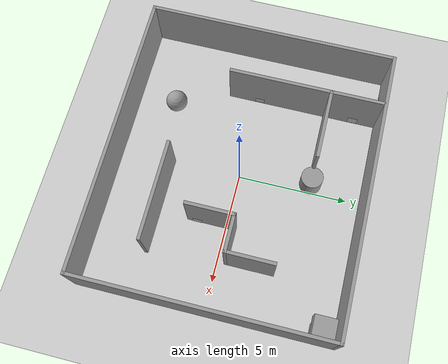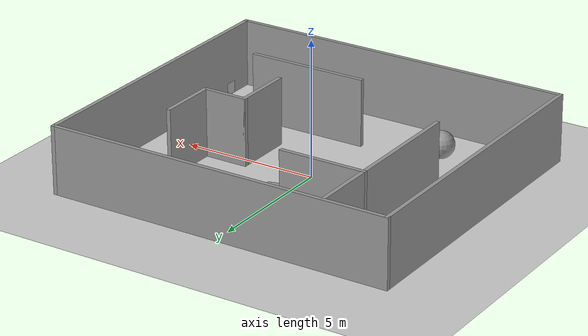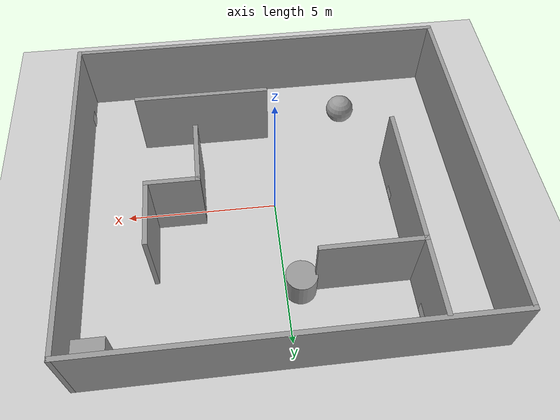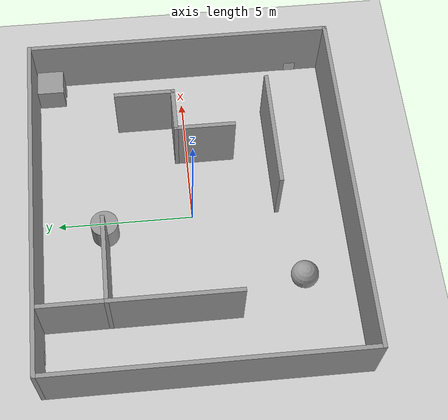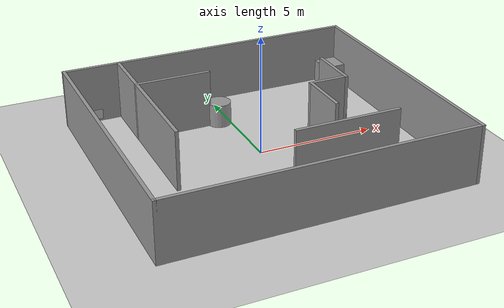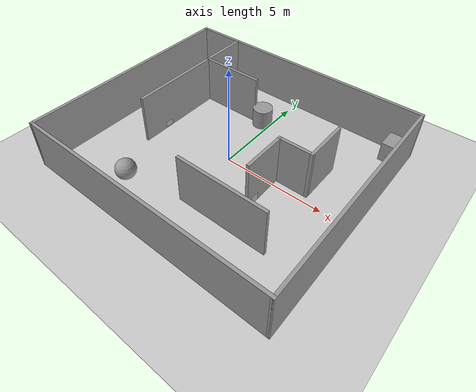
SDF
<sdf version="1.7">
 <world name="default">
  <light name="sun" type="directional">
   <pose>0 0 10 0 -0 0</pose>
   <diffuse>0.8 0.8 0.8 1</diffuse>
   <specular>0.2 0.2 0.2 1</specular>
   <attenuation>
    <range>1000</range>
    <constant>0.9</constant>
    <linear>0.01</linear>
    <quadratic>0.001</quadratic>
   </attenuation>
   <direction>-0.5 0.1 -0.9</direction>
   <spot><inner_angle>0</inner_angle><outer_angle>0</outer_angle><falloff>0</falloff></spot>
  </light>
  <model name="ground_plane">
   <static>1</static>
   <link name="link">
    <collision name="collision">
     <geometry><plane><normal>0 0 1</normal><size>100 100</size></plane></geometry>
     <surface><friction><ode><mu>100</mu><mu2>50</mu2></ode></friction></surface>
    </collision>
    <visual name="visual">
     <cast_shadows>0</cast_shadows>
     <geometry><plane><normal>0 0 1</normal><size>100 100</size></plane></geometry>
     <material>
      <script><uri>file://media/materials/scripts/gazebo.material</uri><name>Gazebo/Grey</name></script>
     </material>
    </visual>
   </link>
  </model>
  <gravity>0 0 -9.8</gravity>
  <magnetic_field>6e-06 2.3e-05 -4.2e-05</magnetic_field>
  <atmosphere type="adiabatic"/>
  <physics type="ode">
   <max_step_size>0.001</max_step_size>
   <real_time_factor>1</real_time_factor>
   <real_time_update_rate>1000</real_time_update_rate>
  </physics>
  <scene><ambient>0.4 0.4 0.4 1</ambient><background>0.7 0.7 0.7 1</background><shadows>1</shadows></scene>
  <audio><device>default</device></audio>
  <spherical_coordinates>
   <surface_model>EARTH_WGS84</surface_model>
   <latitude_deg>0</latitude_deg>
   <longitude_deg>0</longitude_deg>
   <elevation>0</elevation>
   <heading_deg>0</heading_deg>
  </spherical_coordinates>
  <model name="mapa">
   <pose>0.020811 0.003459 0 0 -0 0</pose>
   <link name="Wall_61">
    <collision name="Wall_61_Collision">
     <geometry><box><size>4.75 0.15 2.5</size></box></geometry>
     <pose>0 0 1.25 0 -0 0</pose>
    </collision>
    <visual name="Wall_61_Visual">
     <pose>0 0 1.25 0 -0 0</pose>
     <geometry><box><size>4.75 0.15 2.5</size></box></geometry>
     <material>
      <script><uri>file://media/materials/scripts/gazebo.material</uri><name>Gazebo/Grey</name></script>
      <ambient>1 1 1 1</ambient>
     </material>
     <meta><layer>0</layer></meta>
    </visual>
    <pose>-4.07465 0.925227 0 0 -0 -1.5708</pose>
   </link>
   <link name="Wall_63">
    <collision name="Wall_63_Collision">
     <geometry><box><size>3.25 0.15 2.5</size></box></geometry>
     <pose>0 0 1.25 0 -0 0</pose>
    </collision>
    <visual name="Wall_63_Visual">
     <pose>0 0 1.25 0 -0 0</pose>
     <geometry><box><size>3.25 0.15 2.5</size></box></geometry>
     <material>
      <script><uri>file://media/materials/scripts/gazebo.material</uri><name>Gazebo/Grey</name></script>
      <ambient>1 1 1 1</ambient>
     </material>
     <meta><layer>0</layer></meta>
    </visual>
    <pose>-2.52465 3.22523 0 0 -0 0</pose>
   </link>
   <link name="Wall_66">
    <collision name="Wall_66_Collision">
     <geometry><box><size>4.5 0.15 2.5</size></box></geometry>
     <pose>0 0 1.25 0 -0 0</pose>
    </collision>
    <visual name="Wall_66_Visual">
     <pose>0 0 1.25 0 -0 0</pose>
     <geometry><box><size>4.5 0.15 2.5</size></box></geometry>
     <material>
      <script><uri>file://media/materials/scripts/gazebo.material</uri><name>Gazebo/Grey</name></script>
      <ambient>1 1 1 1</ambient>
     </material>
     <meta><layer>0</layer></meta>
    </visual>
    <pose>2.15807 -3.15995 0 0 -0 3.14159</pose>
   </link>
   <link name="Wall_69">
    <collision name="Wall_69_Collision">
     <geometry><box><size>13 0.15 2.5</size></box></geometry>
     <pose>0 0 1.25 0 -0 0</pose>
    </collision>
    <visual name="Wall_69_Visual">
     <pose>0 0 1.25 0 -0 0</pose>
     <geometry><box><size>13 0.15 2.5</size></box></geometry>
     <material>
      <script><uri>file://media/materials/scripts/gazebo.material</uri><name>Gazebo/Grey</name></script>
      <ambient>1 1 1 1</ambient>
     </material>
     <meta><layer>0</layer></meta>
    </visual>
    <pose>0 -5.675 0 0 -0 0</pose>
   </link>
   <link name="Wall_71">
    <collision name="Wall_71_Collision">
     <geometry><box><size>11.5 0.15 2.5</size></box></geometry>
     <pose>0 0 1.25 0 -0 0</pose>
    </collision>
    <visual name="Wall_71_Visual">
     <pose>0 0 1.25 0 -0 0</pose>
     <geometry><box><size>11.5 0.15 2.5</size></box></geometry>
     <material>
      <script><uri>file://media/materials/scripts/gazebo.material</uri><name>Gazebo/Grey</name></script>
      <ambient>1 1 1 1</ambient>
     </material>
     <meta><layer>0</layer></meta>
    </visual>
    <pose>6.425 0 0 0 -0 1.5708</pose>
   </link>
   <link name="Wall_73">
    <collision name="Wall_73_Collision">
     <geometry><box><size>2.25 0.15 2.5</size></box></geometry>
     <pose>0 0 1.25 0 -0 0</pose>
    </collision>
    <visual name="Wall_73_Visual">
     <pose>0 0 1.25 0 -0 0</pose>
     <geometry><box><size>2.25 0.15 2.5</size></box></geometry>
     <material>
      <script><uri>file://media/materials/scripts/gazebo.material</uri><name>Gazebo/Grey</name></script>
      <ambient>1 1 1 1</ambient>
     </material>
     <meta><layer>0</layer></meta>
    </visual>
    <pose>4.01646 1.43647 0 0 -0 -1.5708</pose>
   </link>
   <link name="Wall_77">
    <collision name="Wall_77_Collision">
     <geometry><box><size>13 0.15 2.5</size></box></geometry>
     <pose>0 0 1.25 0 -0 0</pose>
    </collision>
    <visual name="Wall_77_Visual">
     <pose>0 0 1.25 0 -0 0</pose>
     <geometry><box><size>13 0.15 2.5</size></box></geometry>
     <material>
      <script><uri>file://media/materials/scripts/gazebo.material</uri><name>Gazebo/Grey</name></script>
      <ambient>1 1 1 1</ambient>
     </material>
     <meta><layer>0</layer></meta>
    </visual>
    <pose>0 5.675 0 0 -0 3.14159</pose>
   </link>
   <link name="Wall_78">
    <collision name="Wall_78_Collision">
     <geometry><box><size>11.5 0.15 2.5</size></box></geometry>
     <pose>0 0 1.25 0 -0 0</pose>
    </collision>
    <visual name="Wall_78_Visual">
     <pose>0 0 1.25 0 -0 0</pose>
     <geometry><box><size>11.5 0.15 2.5</size></box></geometry>
     <material>
      <script><uri>file://media/materials/scripts/gazebo.material</uri><name>Gazebo/Grey</name></script>
      <ambient>1 1 1 1</ambient>
     </material>
     <meta><layer>0</layer></meta>
    </visual>
    <pose>-6.425 0 0 0 -0 -1.5708</pose>
   </link>
   <link name="Wall_80">
    <collision name="Wall_80_Collision">
     <geometry><box><size>2.5 0.15 2.5</size></box></geometry>
     <pose>0 0 1.25 0 -0 0</pose>
    </collision>
    <visual name="Wall_80_Visual">
     <pose>0 0 1.25 0 -0 0</pose>
     <geometry><box><size>2.5 0.15 2.5</size></box></geometry>
     <material>
      <script><uri>file://media/materials/scripts/gazebo.material</uri><name>Gazebo/Grey</name></script>
      <ambient>1 1 1 1</ambient>
     </material>
     <meta><layer>0</layer></meta>
    </visual>
    <pose>-4.07465 4.40023 0 0 -0 1.5708</pose>
   </link>
   <link name="Wall_82">
    <collision name="Wall_82_Collision">
     <geometry><box><size>1.75 0.15 2.5</size></box></geometry>
     <pose>0 0 1.25 0 -0 0</pose>
    </collision>
    <visual name="Wall_82_Visual">
     <pose>0 0 1.25 0 -0 0</pose>
     <geometry><box><size>1.75 0.15 2.5</size></box></geometry>
     <material>
      <script><uri>file://media/materials/scripts/gazebo.material</uri><name>Gazebo/Grey</name></script>
      <ambient>1 1 1 1</ambient>
     </material>
     <meta><layer>0</layer></meta>
    </visual>
    <pose>3.21646 0.386473 0 0 -0 3.14159</pose>
   </link>
   <link name="Wall_83">
    <collision name="Wall_83_Collision">
     <geometry><box><size>2.25 0.15 2.5</size></box></geometry>
     <pose>0 0 1.25 0 -0 0</pose>
    </collision>
    <visual name="Wall_83_Visual">
     <pose>0 0 1.25 0 -0 0</pose>
     <geometry><box><size>2.25 0.15 2.5</size></box></geometry>
     <material>
      <script><uri>file://media/materials/scripts/gazebo.material</uri><name>Gazebo/Grey</name></script>
      <ambient>1 1 1 1</ambient>
     </material>
     <meta><layer>0</layer></meta>
    </visual>
    <pose>2.41646 -0.663527 0 0 -0 -1.5708</pose>
   </link>
   <static>1</static>
  </model>
  <model name="mapa_0">
   <link name="link_0">
    <inertial>
     <mass>1</mass>
     <inertia>
      <ixx>0.166667</ixx>
      <ixy>0</ixy>
      <ixz>0</ixz>
      <iyy>0.166667</iyy>
      <iyz>0</iyz>
      <izz>0.166667</izz>
     </inertia>
    </inertial>
    <pose>5.98387 4.87912 0.479891 0 -0 0</pose>
    <visual name="visual">
     <geometry><box><size>1 1 1</size></box></geometry>
     <material>
      <lighting>1</lighting>
      <script><uri>file://media/materials/scripts/gazebo.material</uri><name>Gazebo/Grey</name></script>
      <shader type="pixel"/>
     </material>
    </visual>
    <collision name="collision">
     <geometry><box><size>1 1 1</size></box></geometry>
     <surface>
      <friction>
       <ode><mu>1</mu><mu2>1</mu2><fdir1>0 0 0</fdir1><slip1>0</slip1><slip2>0</slip2></ode>
       <torsional>
        <coefficient>1</coefficient>
        <patch_radius>0</patch_radius>
        <surface_radius>0</surface_radius>
        <use_patch_radius>1</use_patch_radius>
        <ode><slip>0</slip></ode>
       </torsional>
      </friction>
      <bounce><restitution_coefficient>0</restitution_coefficient><threshold>1e+06</threshold></bounce>
      <contact>
       <collide_without_contact>0</collide_without_contact>
       <collide_without_contact_bitmask>1</collide_without_contact_bitmask>
       <collide_bitmask>1</collide_bitmask>
       <ode>
        <soft_cfm>0</soft_cfm>
        <soft_erp>0.2</soft_erp>
        <kp>1e+13</kp>
        <kd>1</kd>
        <max_vel>0.01</max_vel>
        <min_depth>0</min_depth>
       </ode>
       <bullet>
        <split_impulse>1</split_impulse>
        <split_impulse_penetration_threshold>-0.01</split_impulse_penetration_threshold>
        <soft_cfm>0</soft_cfm>
        <soft_erp>0.2</soft_erp>
        <kp>1e+13</kp>
        <kd>1</kd>
       </bullet>
      </contact>
     </surface>
    </collision>
   </link>
   <link name="link_1">
    <inertial>
     <mass>1</mass>
     <inertia><ixx>0.1</ixx><ixy>0</ixy><ixz>0</ixz><iyy>0.1</iyy><iyz>0</iyz><izz>0.1</izz></inertia>
    </inertial>
    <pose>-2.75749 -3.97841 0.479891 0 -0 0</pose>
    <visual name="visual">
     <geometry><sphere><radius>0.5</radius></sphere></geometry>
     <material>
      <lighting>1</lighting>
      <script><uri>file://media/materials/scripts/gazebo.material</uri><name>Gazebo/Grey</name></script>
      <shader type="pixel"/>
     </material>
    </visual>
    <collision name="collision">
     <geometry><sphere><radius>0.5</radius></sphere></geometry>
     <surface>
      <friction>
       <ode><mu>1</mu><mu2>1</mu2><fdir1>0 0 0</fdir1><slip1>0</slip1><slip2>0</slip2></ode>
       <torsional>
        <coefficient>1</coefficient>
        <patch_radius>0</patch_radius>
        <surface_radius>0</surface_radius>
        <use_patch_radius>1</use_patch_radius>
        <ode><slip>0</slip></ode>
       </torsional>
      </friction>
      <bounce><restitution_coefficient>0</restitution_coefficient><threshold>1e+06</threshold></bounce>
      <contact>
       <collide_without_contact>0</collide_without_contact>
       <collide_without_contact_bitmask>1</collide_without_contact_bitmask>
       <collide_bitmask>1</collide_bitmask>
       <ode>
        <soft_cfm>0</soft_cfm>
        <soft_erp>0.2</soft_erp>
        <kp>1e+13</kp>
        <kd>1</kd>
        <max_vel>0.01</max_vel>
        <min_depth>0</min_depth>
       </ode>
       <bullet>
        <split_impulse>1</split_impulse>
        <split_impulse_penetration_threshold>-0.01</split_impulse_penetration_threshold>
        <soft_cfm>0</soft_cfm>
        <soft_erp>0.2</soft_erp>
        <kp>1e+13</kp>
        <kd>1</kd>
       </bullet>
      </contact>
     </surface>
    </collision>
   </link>
   <link name="link_3">
    <inertial>
     <mass>1</mass>
     <inertia><ixx>0.145833</ixx><ixy>0</ixy><ixz>0</ixz><iyy>0.145833</iyy><iyz>0</iyz><izz>0.125</izz></inertia>
    </inertial>
    <pose>-0.340415 3.0635 0.479891 0 -0 0</pose>
    <visual name="visual">
     <geometry><cylinder><radius>0.5</radius><length>1</length></cylinder></geometry>
     <material>
      <lighting>1</lighting>
      <script><uri>file://media/materials/scripts/gazebo.material</uri><name>Gazebo/Grey</name></script>
      <shader type="pixel"/>
     </material>
    </visual>
    <collision name="collision">
     <geometry><cylinder><radius>0.5</radius><length>1</length></cylinder></geometry>
     <surface>
      <friction>
       <ode><mu>1</mu><mu2>1</mu2><fdir1>0 0 0</fdir1><slip1>0</slip1><slip2>0</slip2></ode>
       <torsional>
        <coefficient>1</coefficient>
        <patch_radius>0</patch_radius>
        <surface_radius>0</surface_radius>
        <use_patch_radius>1</use_patch_radius>
        <ode><slip>0</slip></ode>
       </torsional>
      </friction>
      <bounce><restitution_coefficient>0</restitution_coefficient><threshold>1e+06</threshold></bounce>
      <contact>
       <collide_without_contact>0</collide_without_contact>
       <collide_without_contact_bitmask>1</collide_without_contact_bitmask>
       <collide_bitmask>1</collide_bitmask>
       <ode>
        <soft_cfm>0</soft_cfm>
        <soft_erp>0.2</soft_erp>
        <kp>1e+13</kp>
        <kd>1</kd>
        <max_vel>0.01</max_vel>
        <min_depth>0</min_depth>
       </ode>
       <bullet>
        <split_impulse>1</split_impulse>
        <split_impulse_penetration_threshold>-0.01</split_impulse_penetration_threshold>
        <soft_cfm>0</soft_cfm>
        <soft_erp>0.2</soft_erp>
        <kp>1e+13</kp>
        <kd>1</kd>
       </bullet>
      </contact>
     </surface>
    </collision>
   </link>
   <model name="qr_qr1">
    <static>1</static>
    <link name="qr_qr1_link">
     <pose>0 0 0.001 0 -0 1.5708</pose>
     <visual name="visual_qr_qr1">
      <cast_shadows>0</cast_shadows>
      <geometry><box><size>0.44 0.44 0.001</size></box></geometry>
      <material>
       <script>
        <uri>model://qr_qr1/materials/scripts</uri>
        <uri>model://qr_qr1/materials/textures</uri>
        <name>qr_qr1/qr_qr1</name>
       </script>
      </material>
     </visual>
    </link>
    <pose>-3.86502 -0.156346 0.259007 0 1.54466 0</pose>
   </model>
   <model name="qr_qr2">
    <static>1</static>
    <link name="qr_qr2_link">
     <pose>0 0 0.001 0 -0 1.5708</pose>
     <visual name="visual_qr_qr2">
      <cast_shadows>0</cast_shadows>
      <geometry><box><size>0.44 0.44 0.001</size></box></geometry>
      <material>
       <script>
        <uri>model://qr_qr2/materials/scripts</uri>
        <uri>model://qr_qr2/materials/textures</uri>
        <name>qr_qr2/qr_qr2</name>
       </script>
      </material>
     </visual>
    </link>
    <pose>2.63888 -1.52403 0.200317 3.14159 1.56629 3.14159</pose>
   </model>
   <model name="qr_qr3">
    <static>1</static>
    <link name="qr_qr3_link">
     <pose>0 0 0.001 0 -0 1.5708</pose>
     <visual name="visual_qr_qr3">
      <cast_shadows>0</cast_shadows>
      <geometry><box><size>0.44 0.44 0.001</size></box></geometry>
      <material>
       <script>
        <uri>model://qr_qr3/materials/scripts</uri>
        <uri>model://qr_qr3/materials/textures</uri>
        <name>qr_qr3/qr_qr3</name>
       </script>
      </material>
     </visual>
    </link>
    <pose>-5.02603 5.37066 0.303021 1.59577 -0 0</pose>
   </model>
   <model name="qr_qr4">
    <static>1</static>
    <link name="qr_qr4_link">
     <pose>0 0 0.001 0 -0 1.5708</pose>
     <visual name="visual_qr_qr4">
      <cast_shadows>0</cast_shadows>
      <geometry><box><size>0.44 0.44 0.001</size></box></geometry>
      <material>
       <script>
        <uri>model://qr_qr4/materials/scripts</uri>
        <uri>model://qr_qr4/materials/textures</uri>
        <name>qr_qr4/qr_qr4</name>
       </script>
      </material>
     </visual>
    </link>
    <pose>-3.86435 4.357 0.234224 0 1.55931 0</pose>
   </model>
   <model name="qr_qr5">
    <static>1</static>
    <link name="qr_qr5_link">
     <pose>0 0 0.001 0 -0 1.5708</pose>
     <visual name="visual_qr_qr5">
      <cast_shadows>0</cast_shadows>
      <geometry><box><size>0.44 0.44 0.001</size></box></geometry>
      <material>
       <script>
        <uri>model://qr_qr5/materials/scripts</uri>
        <uri>model://qr_qr5/materials/textures</uri>
        <name>qr_qr5/qr_qr5</name>
       </script>
      </material>
     </visual>
    </link>
    <pose>6.04456 4.34587 0.188357 1.55434 -0 0</pose>
   </model>
   <model name="qr_qr6">
    <static>1</static>
    <link name="qr_qr6_link">
     <pose>0 0 0.001 0 -0 1.5708</pose>
     <visual name="visual_qr_qr6">
      <cast_shadows>0</cast_shadows>
      <geometry><box><size>0.44 0.44 0.001</size></box></geometry>
      <material>
       <script>
        <uri>model://qr_qr6/materials/scripts</uri>
        <uri>model://qr_qr6/materials/textures</uri>
        <name>qr_qr6/qr_qr6</name>
       </script>
      </material>
     </visual>
    </link>
    <pose>6.4476 -4.67237 0.246555 0 -1.54227 0</pose>
   </model>
   <static>0</static>
   <pose>-0.113186 0.196171 0.020109 0 -0 5e-06</pose>
  </model>
 </world>
</sdf>
